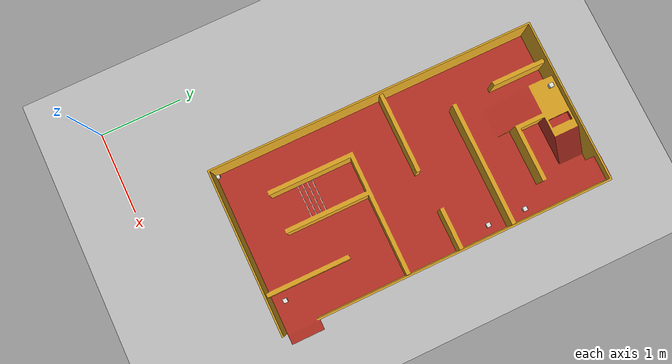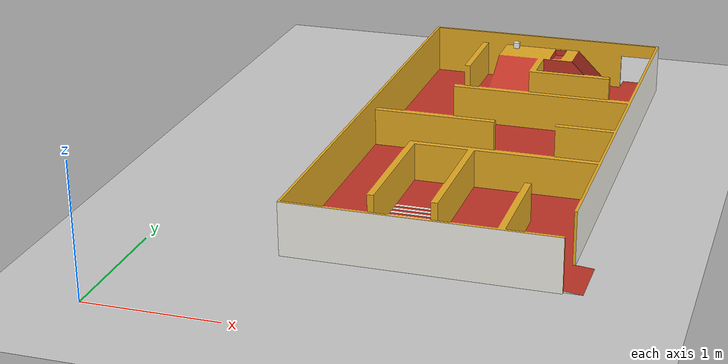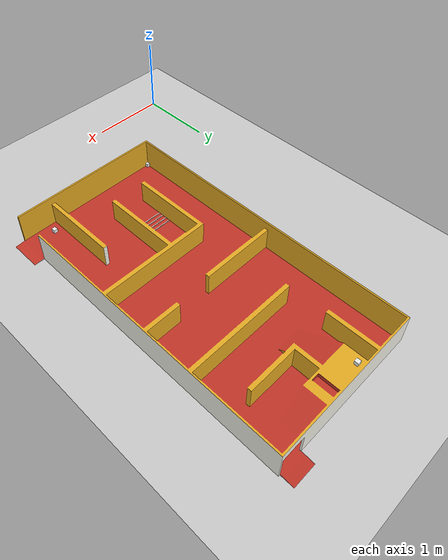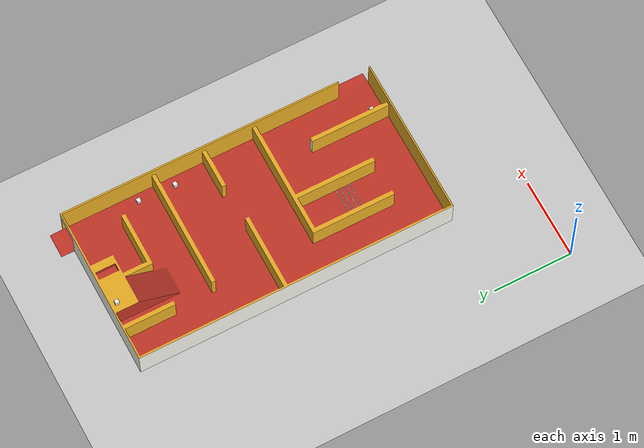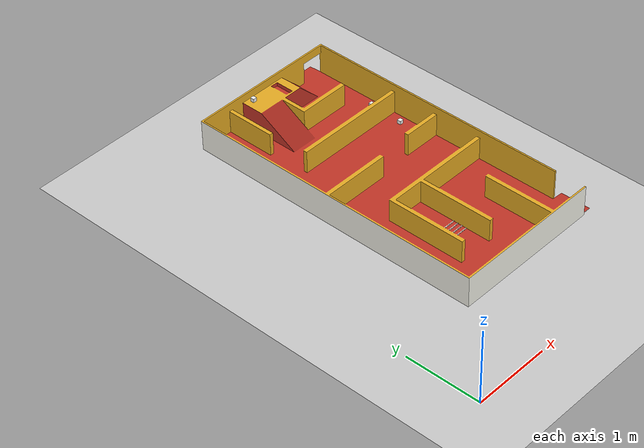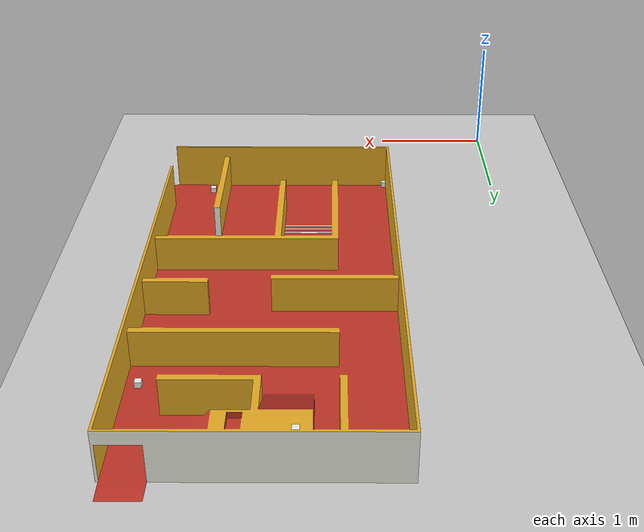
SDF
<sdf version="1.4">
 <world name="default">
  <include><uri>model://ground_plane</uri></include>
  <include><uri>model://sun</uri></include>
  <include><uri>model://pnp_game_field</uri><name>game_field</name><pose>1 1 0 0 0 0</pose></include>
  <include><uri>model://box</uri><name>box1</name><pose>1.010 1.010 0.01 0 0 0</pose></include>
  <include><uri>model://box</uri><name>box2</name><pose>2.630 1.130 0.01 0 0 0</pose></include>
  <include><uri>model://box</uri><name>box3</name><pose>2.845 3.586 0.01 0 0 0</pose></include>
  <include><uri>model://box</uri><name>box4</name><pose>2.860 4.050 0.01 0 0 0</pose></include>
  <include><uri>model://box</uri><name>box5</name><pose>1.730 4.880 0.315 0 0 0</pose></include>
 </world>
</sdf>

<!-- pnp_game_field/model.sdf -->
<sdf version="1.4">
    <model name="game_field">
        <static>true</static>
        <link name="link">
            <collision name="collision">
                <geometry>
                    <mesh>
                    <scale>0.001 0.001 0.001</scale>
                    <uri>model://pnp_game_field/meshes/game_field.dae</uri>
                    </mesh>
                </geometry>
            </collision>
            <visual name="visual">
                <geometry>
                    <mesh>
                    <scale>0.001 0.001 0.001</scale>
                    <uri>model://pnp_game_field/meshes/game_field.dae</uri>
                    </mesh>
                </geometry>
            </visual>
        </link>
    </model>
</sdf>

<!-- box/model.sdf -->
<sdf version="1.4">
    <model name="acrylic_box">
        <static>false</static>
        <link name="link">
            <collision name="collision">
                <geometry>
                    <mesh>
                    <scale>0.001 0.001 0.001</scale>
                    <uri>model://box/meshes/box.dae</uri>
                    </mesh>
                </geometry>
            </collision>
            <visual name="visual">
                <geometry>
                    <mesh>
                    <scale>0.001 0.001 0.001</scale>
                    <uri>model://box/meshes/box.dae</uri>
                    </mesh>
                </geometry>
            </visual>
        </link>
    </model>
</sdf>
